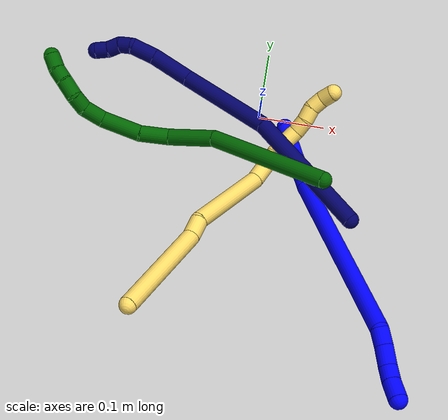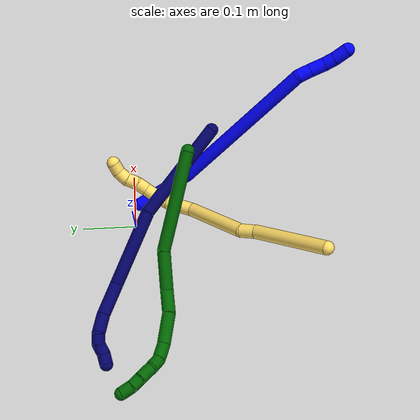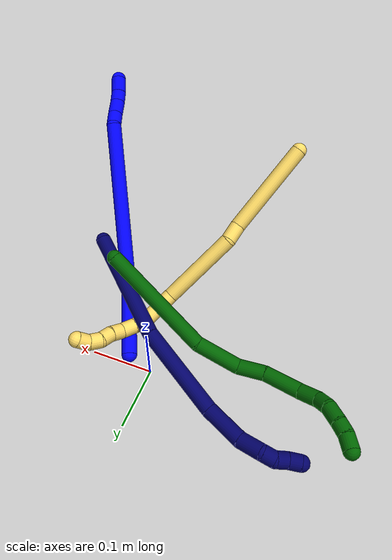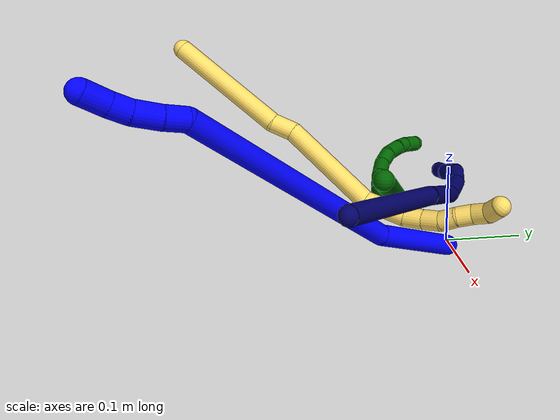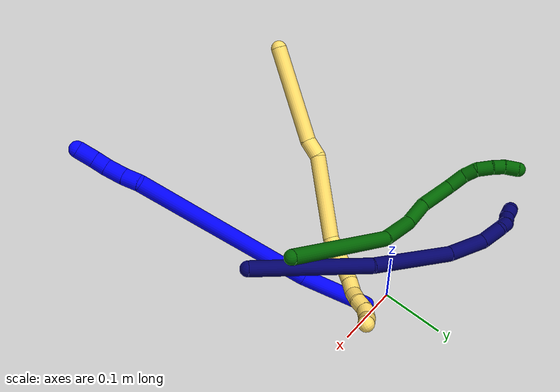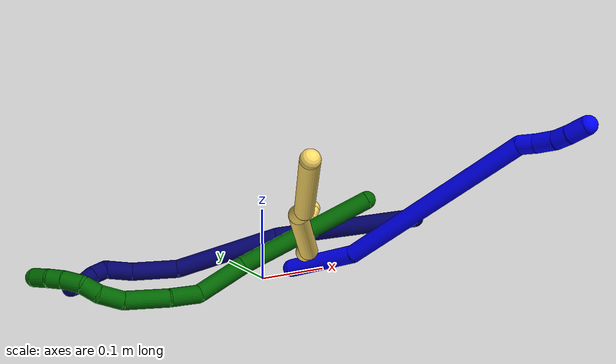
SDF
<sdf version="1.7">
 <world name="default">
  <model name="1">
   <static>0</static>
   <link name="1">
    <collision name="collision-cylinder-e_1_1_4">
     <pose>0.005986 -0.002206 0.053922 0.040888 0.110465 0.002261</pose>
     <geometry><cylinder><radius>0.0125</radius><length>0.108597</length></cylinder></geometry>
     <surface>
      <friction><ode><mu>1.16</mu><mu2>1.16</mu2><slip1>0</slip1><slip2>0</slip2></ode></friction>
      <contact><ode><kp>1e+06</kp><kd>1</kd><max_vel>0</max_vel><min_depth>0.001</min_depth></ode></contact>
     </surface>
    </collision>
    <visual name="visual-cylinder-e_1_1_4">
     <pose>0.005986 -0.002206 0.053922 0.040888 0.110465 0.002261</pose>
     <geometry><cylinder><radius>0.0125</radius><length>0.108597</length></cylinder></geometry>
     <material><ambient>0 0 1 1</ambient></material>
    </visual>
    <collision name="collision-cylinder-e_2_4_5">
     <pose>0.009596 -0.049845 0.246526 0.316591 -0.016279 -0.002599</pose>
     <geometry><cylinder><radius>0.0125</radius><length>0.291907</length></cylinder></geometry>
     <surface>
      <friction><ode><mu>1.16</mu><mu2>1.16</mu2><slip1>0</slip1><slip2>0</slip2></ode></friction>
      <contact><ode><kp>1e+06</kp><kd>1</kd><max_vel>0</max_vel><min_depth>0.001</min_depth></ode></contact>
     </surface>
    </collision>
    <visual name="visual-cylinder-e_2_4_5">
     <pose>0.009596 -0.049845 0.246526 0.316591 -0.016279 -0.002599</pose>
     <geometry><cylinder><radius>0.0125</radius><length>0.291907</length></cylinder></geometry>
     <material><ambient>0 0 1 1</ambient></material>
    </visual>
    <collision name="collision-cylinder-e_3_5_6">
     <pose>0.009707 -0.094182 0.396862 -0.093811 0.209351 -0.009863</pose>
     <geometry><cylinder><radius>0.0125</radius><length>0.023935</length></cylinder></geometry>
     <surface>
      <friction><ode><mu>1.16</mu><mu2>1.16</mu2><slip1>0</slip1><slip2>0</slip2></ode></friction>
      <contact><ode><kp>1e+06</kp><kd>1</kd><max_vel>0</max_vel><min_depth>0.001</min_depth></ode></contact>
     </surface>
    </collision>
    <visual name="visual-cylinder-e_3_5_6">
     <pose>0.009707 -0.094182 0.396862 -0.093811 0.209351 -0.009863</pose>
     <geometry><cylinder><radius>0.0125</radius><length>0.023935</length></cylinder></geometry>
     <material><ambient>0 0 1 1</ambient></material>
    </visual>
    <collision name="collision-cylinder-e_4_6_7">
     <pose>0.015733 -0.093077 0.422164 -0.000616 0.253696 -7.9e-05</pose>
     <geometry><cylinder><radius>0.0125</radius><length>0.028196</length></cylinder></geometry>
     <surface>
      <friction><ode><mu>1.16</mu><mu2>1.16</mu2><slip1>0</slip1><slip2>0</slip2></ode></friction>
      <contact><ode><kp>1e+06</kp><kd>1</kd><max_vel>0</max_vel><min_depth>0.001</min_depth></ode></contact>
     </surface>
    </collision>
    <visual name="visual-cylinder-e_4_6_7">
     <pose>0.015733 -0.093077 0.422164 -0.000616 0.253696 -7.9e-05</pose>
     <geometry><cylinder><radius>0.0125</radius><length>0.028196</length></cylinder></geometry>
     <material><ambient>0 0 1 1</ambient></material>
    </visual>
    <collision name="collision-cylinder-e_5_7_8">
     <pose>0.021267 -0.094911 0.445788 0.182526 0.194239 0.017832</pose>
     <geometry><cylinder><radius>0.0125</radius><length>0.020681</length></cylinder></geometry>
     <surface>
      <friction><ode><mu>1.16</mu><mu2>1.16</mu2><slip1>0</slip1><slip2>0</slip2></ode></friction>
      <contact><ode><kp>1e+06</kp><kd>1</kd><max_vel>0</max_vel><min_depth>0.001</min_depth></ode></contact>
     </surface>
    </collision>
    <visual name="visual-cylinder-e_5_7_8">
     <pose>0.021267 -0.094911 0.445788 0.182526 0.194239 0.017832</pose>
     <geometry><cylinder><radius>0.0125</radius><length>0.020681</length></cylinder></geometry>
     <material><ambient>0 0 1 1</ambient></material>
    </visual>
    <collision name="collision-cylinder-e_6_8_2">
     <pose>0.024396 -0.09988 0.468686 0.237503 0.085056 0.010154</pose>
     <geometry><cylinder><radius>0.0125</radius><length>0.026685</length></cylinder></geometry>
     <surface>
      <friction><ode><mu>1.16</mu><mu2>1.16</mu2><slip1>0</slip1><slip2>0</slip2></ode></friction>
      <contact><ode><kp>1e+06</kp><kd>1</kd><max_vel>0</max_vel><min_depth>0.001</min_depth></ode></contact>
     </surface>
    </collision>
    <visual name="visual-cylinder-e_6_8_2">
     <pose>0.024396 -0.09988 0.468686 0.237503 0.085056 0.010154</pose>
     <geometry><cylinder><radius>0.0125</radius><length>0.026685</length></cylinder></geometry>
     <material><ambient>0 0 1 1</ambient></material>
    </visual>
    <collision name="collision-sphere-2">
     <pose>0.02553 -0.103008 0.481607 0 -0 0</pose>
     <geometry><sphere><radius>0.0125</radius></sphere></geometry>
     <surface>
      <friction><ode><mu>1.16</mu><mu2>1.16</mu2><slip1>0</slip1><slip2>0</slip2></ode></friction>
      <contact><ode><kp>1e+06</kp><kd>1</kd><max_vel>0</max_vel><min_depth>0.001</min_depth></ode></contact>
     </surface>
    </collision>
    <visual name="visual-sphere-2">
     <pose>0.02553 -0.103008 0.481607 0 -0 0</pose>
     <geometry><sphere><radius>0.0125</radius></sphere></geometry>
     <material><ambient>0 0 1 1</ambient></material>
    </visual>
    <collision name="collision-sphere-4">
     <pose>0.011972 -0.004412 0.107845 0 -0 0</pose>
     <geometry><sphere><radius>0.0125</radius></sphere></geometry>
     <surface>
      <friction><ode><mu>1.16</mu><mu2>1.16</mu2><slip1>0</slip1><slip2>0</slip2></ode></friction>
      <contact><ode><kp>1e+06</kp><kd>1</kd><max_vel>0</max_vel><min_depth>0.001</min_depth></ode></contact>
     </surface>
    </collision>
    <visual name="visual-sphere-4">
     <pose>0.011972 -0.004412 0.107845 0 -0 0</pose>
     <geometry><sphere><radius>0.0125</radius></sphere></geometry>
     <material><ambient>0 0 1 1</ambient></material>
    </visual>
    <collision name="collision-sphere-1">
     <geometry><sphere><radius>0.0125</radius></sphere></geometry>
     <surface>
      <friction><ode><mu>1.16</mu><mu2>1.16</mu2><slip1>0</slip1><slip2>0</slip2></ode></friction>
      <contact><ode><kp>1e+06</kp><kd>1</kd><max_vel>0</max_vel><min_depth>0.001</min_depth></ode></contact>
     </surface>
    </collision>
    <visual name="visual-sphere-1">
     <geometry><sphere><radius>0.0125</radius></sphere></geometry>
     <material><ambient>0 0 1 1</ambient></material>
    </visual>
    <collision name="collision-sphere-8">
     <pose>0.023263 -0.096752 0.455765 0 -0 0</pose>
     <geometry><sphere><radius>0.0125</radius></sphere></geometry>
     <surface>
      <friction><ode><mu>1.16</mu><mu2>1.16</mu2><slip1>0</slip1><slip2>0</slip2></ode></friction>
      <contact><ode><kp>1e+06</kp><kd>1</kd><max_vel>0</max_vel><min_depth>0.001</min_depth></ode></contact>
     </surface>
    </collision>
    <visual name="visual-sphere-8">
     <pose>0.023263 -0.096752 0.455765 0 -0 0</pose>
     <geometry><sphere><radius>0.0125</radius></sphere></geometry>
     <material><ambient>0 0 1 1</ambient></material>
    </visual>
    <collision name="collision-sphere-5">
     <pose>0.00722 -0.095279 0.385207 0 -0 0</pose>
     <geometry><sphere><radius>0.0125</radius></sphere></geometry>
     <surface>
      <friction><ode><mu>1.16</mu><mu2>1.16</mu2><slip1>0</slip1><slip2>0</slip2></ode></friction>
      <contact><ode><kp>1e+06</kp><kd>1</kd><max_vel>0</max_vel><min_depth>0.001</min_depth></ode></contact>
     </surface>
    </collision>
    <visual name="visual-sphere-5">
     <pose>0.00722 -0.095279 0.385207 0 -0 0</pose>
     <geometry><sphere><radius>0.0125</radius></sphere></geometry>
     <material><ambient>0 0 1 1</ambient></material>
    </visual>
    <collision name="collision-sphere-6">
     <pose>0.012194 -0.093086 0.408517 0 -0 0</pose>
     <geometry><sphere><radius>0.0125</radius></sphere></geometry>
     <surface>
      <friction><ode><mu>1.16</mu><mu2>1.16</mu2><slip1>0</slip1><slip2>0</slip2></ode></friction>
      <contact><ode><kp>1e+06</kp><kd>1</kd><max_vel>0</max_vel><min_depth>0.001</min_depth></ode></contact>
     </surface>
    </collision>
    <visual name="visual-sphere-6">
     <pose>0.012194 -0.093086 0.408517 0 -0 0</pose>
     <geometry><sphere><radius>0.0125</radius></sphere></geometry>
     <material><ambient>0 0 1 1</ambient></material>
    </visual>
    <collision name="collision-sphere-7">
     <pose>0.019271 -0.093069 0.435811 0 -0 0</pose>
     <geometry><sphere><radius>0.0125</radius></sphere></geometry>
     <surface>
      <friction><ode><mu>1.16</mu><mu2>1.16</mu2><slip1>0</slip1><slip2>0</slip2></ode></friction>
      <contact><ode><kp>1e+06</kp><kd>1</kd><max_vel>0</max_vel><min_depth>0.001</min_depth></ode></contact>
     </surface>
    </collision>
    <visual name="visual-sphere-7">
     <pose>0.019271 -0.093069 0.435811 0 -0 0</pose>
     <geometry><sphere><radius>0.0125</radius></sphere></geometry>
     <material><ambient>0 0 1 1</ambient></material>
    </visual>
    <inertial>
     <pose>0.010436 -0.048593 0.241893 0 -0 0</pose>
     <mass>0.5</mass>
     <inertia><ixx>0.0022</ixx><ixy>0</ixy><ixz>0</ixz><iyy>0.002087</iyy><iyz>0</iyz><izz>0.000712</izz></inertia>
    </inertial>
   </link>
   <pose>0.04151 -0.010951 0.011478 -1.24228 0.156935 -2.53498</pose>
  </model>
  <model name="5">
   <static>0</static>
   <link name="5">
    <collision name="collision-cylinder-e_1_1_4">
     <pose>0.016928 0.011769 -0.075087 -2.98612 0.219153 -1.90943</pose>
     <geometry><cylinder><radius>0.0125</radius><length>0.155733</length></cylinder></geometry>
     <surface>
      <friction><ode><mu>1.16</mu><mu2>1.16</mu2><slip1>0</slip1><slip2>0</slip2></ode></friction>
      <contact><ode><kp>1e+06</kp><kd>1</kd><max_vel>0</max_vel><min_depth>0.001</min_depth></ode></contact>
     </surface>
    </collision>
    <visual name="visual-cylinder-e_1_1_4">
     <pose>0.016928 0.011769 -0.075087 -2.98612 0.219153 -1.90943</pose>
     <geometry><cylinder><radius>0.0125</radius><length>0.155733</length></cylinder></geometry>
     <material><ambient>1 0.858824 0.4 1</ambient></material>
    </visual>
    <collision name="collision-cylinder-e_2_4_5">
     <pose>0.033238 0.027689 -0.164211 -2.85405 -0.042244 0.289799</pose>
     <geometry><cylinder><radius>0.0125</radius><length>0.029302</length></cylinder></geometry>
     <surface>
      <friction><ode><mu>1.16</mu><mu2>1.16</mu2><slip1>0</slip1><slip2>0</slip2></ode></friction>
      <contact><ode><kp>1e+06</kp><kd>1</kd><max_vel>0</max_vel><min_depth>0.001</min_depth></ode></contact>
     </surface>
    </collision>
    <visual name="visual-cylinder-e_2_4_5">
     <pose>0.033238 0.027689 -0.164211 -2.85405 -0.042244 0.289799</pose>
     <geometry><cylinder><radius>0.0125</radius><length>0.029302</length></cylinder></geometry>
     <material><ambient>1 0.858824 0.4 1</ambient></material>
    </visual>
    <collision name="collision-cylinder-e_3_5_6">
     <pose>0.056115 0.043132 -0.2388 -2.95724 0.364406 -2.21157</pose>
     <geometry><cylinder><radius>0.0125</radius><length>0.131849</length></cylinder></geometry>
     <surface>
      <friction><ode><mu>1.16</mu><mu2>1.16</mu2><slip1>0</slip1><slip2>0</slip2></ode></friction>
      <contact><ode><kp>1e+06</kp><kd>1</kd><max_vel>0</max_vel><min_depth>0.001</min_depth></ode></contact>
     </surface>
    </collision>
    <visual name="visual-cylinder-e_3_5_6">
     <pose>0.056115 0.043132 -0.2388 -2.95724 0.364406 -2.21157</pose>
     <geometry><cylinder><radius>0.0125</radius><length>0.131849</length></cylinder></geometry>
     <material><ambient>1 0.858824 0.4 1</ambient></material>
    </visual>
    <collision name="collision-cylinder-e_4_6_7">
     <pose>0.081934 0.065676 -0.323155 -2.69998 0.088058 -0.387624</pose>
     <geometry><cylinder><radius>0.0125</radius><length>0.052863</length></cylinder></geometry>
     <surface>
      <friction><ode><mu>1.16</mu><mu2>1.16</mu2><slip1>0</slip1><slip2>0</slip2></ode></friction>
      <contact><ode><kp>1e+06</kp><kd>1</kd><max_vel>0</max_vel><min_depth>0.001</min_depth></ode></contact>
     </surface>
    </collision>
    <visual name="visual-cylinder-e_4_6_7">
     <pose>0.081934 0.065676 -0.323155 -2.69998 0.088058 -0.387624</pose>
     <geometry><cylinder><radius>0.0125</radius><length>0.052863</length></cylinder></geometry>
     <material><ambient>1 0.858824 0.4 1</ambient></material>
    </visual>
    <collision name="collision-cylinder-e_5_7_8">
     <pose>0.085594 0.085524 -0.355941 -2.37823 0.107026 -0.265343</pose>
     <geometry><cylinder><radius>0.0125</radius><length>0.025006</length></cylinder></geometry>
     <surface>
      <friction><ode><mu>1.16</mu><mu2>1.16</mu2><slip1>0</slip1><slip2>0</slip2></ode></friction>
      <contact><ode><kp>1e+06</kp><kd>1</kd><max_vel>0</max_vel><min_depth>0.001</min_depth></ode></contact>
     </surface>
    </collision>
    <visual name="visual-cylinder-e_5_7_8">
     <pose>0.085594 0.085524 -0.355941 -2.37823 0.107026 -0.265343</pose>
     <geometry><cylinder><radius>0.0125</radius><length>0.025006</length></cylinder></geometry>
     <material><ambient>1 0.858824 0.4 1</ambient></material>
    </visual>
    <collision name="collision-cylinder-e_6_8_9">
     <pose>0.088852 0.102854 -0.372094 -2.25815 0.168471 -0.353383</pose>
     <geometry><cylinder><radius>0.0125</radius><length>0.022928</length></cylinder></geometry>
     <surface>
      <friction><ode><mu>1.16</mu><mu2>1.16</mu2><slip1>0</slip1><slip2>0</slip2></ode></friction>
      <contact><ode><kp>1e+06</kp><kd>1</kd><max_vel>0</max_vel><min_depth>0.001</min_depth></ode></contact>
     </surface>
    </collision>
    <visual name="visual-cylinder-e_6_8_9">
     <pose>0.088852 0.102854 -0.372094 -2.25815 0.168471 -0.353383</pose>
     <geometry><cylinder><radius>0.0125</radius><length>0.022928</length></cylinder></geometry>
     <material><ambient>1 0.858824 0.4 1</ambient></material>
    </visual>
    <collision name="collision-cylinder-e_7_9_10">
     <pose>0.090302 0.12131 -0.383654 -1.99496 -0.044238 0.0685</pose>
     <geometry><cylinder><radius>0.0125</radius><length>0.021353</length></cylinder></geometry>
     <surface>
      <friction><ode><mu>1.16</mu><mu2>1.16</mu2><slip1>0</slip1><slip2>0</slip2></ode></friction>
      <contact><ode><kp>1e+06</kp><kd>1</kd><max_vel>0</max_vel><min_depth>0.001</min_depth></ode></contact>
     </surface>
    </collision>
    <visual name="visual-cylinder-e_7_9_10">
     <pose>0.090302 0.12131 -0.383654 -1.99496 -0.044238 0.0685</pose>
     <geometry><cylinder><radius>0.0125</radius><length>0.021353</length></cylinder></geometry>
     <material><ambient>1 0.858824 0.4 1</ambient></material>
    </visual>
    <collision name="collision-cylinder-e_8_10_11">
     <pose>0.088048 0.139239 -0.394016 -2.1998 -0.173815 0.338999</pose>
     <geometry><cylinder><radius>0.0125</radius><length>0.020614</length></cylinder></geometry>
     <surface>
      <friction><ode><mu>1.16</mu><mu2>1.16</mu2><slip1>0</slip1><slip2>0</slip2></ode></friction>
      <contact><ode><kp>1e+06</kp><kd>1</kd><max_vel>0</max_vel><min_depth>0.001</min_depth></ode></contact>
     </surface>
    </collision>
    <visual name="visual-cylinder-e_8_10_11">
     <pose>0.088048 0.139239 -0.394016 -2.1998 -0.173815 0.338999</pose>
     <geometry><cylinder><radius>0.0125</radius><length>0.020614</length></cylinder></geometry>
     <material><ambient>1 0.858824 0.4 1</ambient></material>
    </visual>
    <collision name="collision-cylinder-e_9_11_12">
     <pose>0.087993 0.156369 -0.404495 -2.03855 0.171158 -0.277108</pose>
     <geometry><cylinder><radius>0.0125</radius><length>0.020286</length></cylinder></geometry>
     <surface>
      <friction><ode><mu>1.16</mu><mu2>1.16</mu2><slip1>0</slip1><slip2>0</slip2></ode></friction>
      <contact><ode><kp>1e+06</kp><kd>1</kd><max_vel>0</max_vel><min_depth>0.001</min_depth></ode></contact>
     </surface>
    </collision>
    <visual name="visual-cylinder-e_9_11_12">
     <pose>0.087993 0.156369 -0.404495 -2.03855 0.171158 -0.277108</pose>
     <geometry><cylinder><radius>0.0125</radius><length>0.020286</length></cylinder></geometry>
     <material><ambient>1 0.858824 0.4 1</ambient></material>
    </visual>
    <collision name="collision-cylinder-e_10_12_2">
     <pose>0.091694 0.175126 -0.40917 -1.5879 0.197961 -0.201353</pose>
     <geometry><cylinder><radius>0.0125</radius><length>0.020066</length></cylinder></geometry>
     <surface>
      <friction><ode><mu>1.16</mu><mu2>1.16</mu2><slip1>0</slip1><slip2>0</slip2></ode></friction>
      <contact><ode><kp>1e+06</kp><kd>1</kd><max_vel>0</max_vel><min_depth>0.001</min_depth></ode></contact>
     </surface>
    </collision>
    <visual name="visual-cylinder-e_10_12_2">
     <pose>0.091694 0.175126 -0.40917 -1.5879 0.197961 -0.201353</pose>
     <geometry><cylinder><radius>0.0125</radius><length>0.020066</length></cylinder></geometry>
     <material><ambient>1 0.858824 0.4 1</ambient></material>
    </visual>
    <collision name="collision-sphere-2">
     <pose>0.093667 0.184962 -0.409338 0 -0 0</pose>
     <geometry><sphere><radius>0.0125</radius></sphere></geometry>
     <surface>
      <friction><ode><mu>1.16</mu><mu2>1.16</mu2><slip1>0</slip1><slip2>0</slip2></ode></friction>
      <contact><ode><kp>1e+06</kp><kd>1</kd><max_vel>0</max_vel><min_depth>0.001</min_depth></ode></contact>
     </surface>
    </collision>
    <visual name="visual-sphere-2">
     <pose>0.093667 0.184962 -0.409338 0 -0 0</pose>
     <geometry><sphere><radius>0.0125</radius></sphere></geometry>
     <material><ambient>1 0.858824 0.4 1</ambient></material>
    </visual>
    <collision name="collision-sphere-12">
     <pose>0.08972 0.16529 -0.409002 0 -0 0</pose>
     <geometry><sphere><radius>0.0125</radius></sphere></geometry>
     <surface>
      <friction><ode><mu>1.16</mu><mu2>1.16</mu2><slip1>0</slip1><slip2>0</slip2></ode></friction>
      <contact><ode><kp>1e+06</kp><kd>1</kd><max_vel>0</max_vel><min_depth>0.001</min_depth></ode></contact>
     </surface>
    </collision>
    <visual name="visual-sphere-12">
     <pose>0.08972 0.16529 -0.409002 0 -0 0</pose>
     <geometry><sphere><radius>0.0125</radius></sphere></geometry>
     <material><ambient>1 0.858824 0.4 1</ambient></material>
    </visual>
    <collision name="collision-sphere-11">
     <pose>0.086265 0.147448 -0.399989 0 -0 0</pose>
     <geometry><sphere><radius>0.0125</radius></sphere></geometry>
     <surface>
      <friction><ode><mu>1.16</mu><mu2>1.16</mu2><slip1>0</slip1><slip2>0</slip2></ode></friction>
      <contact><ode><kp>1e+06</kp><kd>1</kd><max_vel>0</max_vel><min_depth>0.001</min_depth></ode></contact>
     </surface>
    </collision>
    <visual name="visual-sphere-11">
     <pose>0.086265 0.147448 -0.399989 0 -0 0</pose>
     <geometry><sphere><radius>0.0125</radius></sphere></geometry>
     <material><ambient>1 0.858824 0.4 1</ambient></material>
    </visual>
    <collision name="collision-sphere-10">
     <pose>0.08983 0.131031 -0.388044 0 -0 0</pose>
     <geometry><sphere><radius>0.0125</radius></sphere></geometry>
     <surface>
      <friction><ode><mu>1.16</mu><mu2>1.16</mu2><slip1>0</slip1><slip2>0</slip2></ode></friction>
      <contact><ode><kp>1e+06</kp><kd>1</kd><max_vel>0</max_vel><min_depth>0.001</min_depth></ode></contact>
     </surface>
    </collision>
    <visual name="visual-sphere-10">
     <pose>0.08983 0.131031 -0.388044 0 -0 0</pose>
     <geometry><sphere><radius>0.0125</radius></sphere></geometry>
     <material><ambient>1 0.858824 0.4 1</ambient></material>
    </visual>
    <collision name="collision-sphere-9">
     <pose>0.090774 0.111589 -0.379264 0 -0 0</pose>
     <geometry><sphere><radius>0.0125</radius></sphere></geometry>
     <surface>
      <friction><ode><mu>1.16</mu><mu2>1.16</mu2><slip1>0</slip1><slip2>0</slip2></ode></friction>
      <contact><ode><kp>1e+06</kp><kd>1</kd><max_vel>0</max_vel><min_depth>0.001</min_depth></ode></contact>
     </surface>
    </collision>
    <visual name="visual-sphere-9">
     <pose>0.090774 0.111589 -0.379264 0 -0 0</pose>
     <geometry><sphere><radius>0.0125</radius></sphere></geometry>
     <material><ambient>1 0.858824 0.4 1</ambient></material>
    </visual>
    <collision name="collision-sphere-4">
     <pose>0.033857 0.023538 -0.150174 0 -0 0</pose>
     <geometry><sphere><radius>0.0125</radius></sphere></geometry>
     <surface>
      <friction><ode><mu>1.16</mu><mu2>1.16</mu2><slip1>0</slip1><slip2>0</slip2></ode></friction>
      <contact><ode><kp>1e+06</kp><kd>1</kd><max_vel>0</max_vel><min_depth>0.001</min_depth></ode></contact>
     </surface>
    </collision>
    <visual name="visual-sphere-4">
     <pose>0.033857 0.023538 -0.150174 0 -0 0</pose>
     <geometry><sphere><radius>0.0125</radius></sphere></geometry>
     <material><ambient>1 0.858824 0.4 1</ambient></material>
    </visual>
    <collision name="collision-sphere-1">
     <geometry><sphere><radius>0.0125</radius></sphere></geometry>
     <surface>
      <friction><ode><mu>1.16</mu><mu2>1.16</mu2><slip1>0</slip1><slip2>0</slip2></ode></friction>
      <contact><ode><kp>1e+06</kp><kd>1</kd><max_vel>0</max_vel><min_depth>0.001</min_depth></ode></contact>
     </surface>
    </collision>
    <visual name="visual-sphere-1">
     <geometry><sphere><radius>0.0125</radius></sphere></geometry>
     <material><ambient>1 0.858824 0.4 1</ambient></material>
    </visual>
    <collision name="collision-sphere-8">
     <pose>0.08693 0.094118 -0.364923 0 -0 0</pose>
     <geometry><sphere><radius>0.0125</radius></sphere></geometry>
     <surface>
      <friction><ode><mu>1.16</mu><mu2>1.16</mu2><slip1>0</slip1><slip2>0</slip2></ode></friction>
      <contact><ode><kp>1e+06</kp><kd>1</kd><max_vel>0</max_vel><min_depth>0.001</min_depth></ode></contact>
     </surface>
    </collision>
    <visual name="visual-sphere-8">
     <pose>0.08693 0.094118 -0.364923 0 -0 0</pose>
     <geometry><sphere><radius>0.0125</radius></sphere></geometry>
     <material><ambient>1 0.858824 0.4 1</ambient></material>
    </visual>
    <collision name="collision-sphere-5">
     <pose>0.032619 0.03184 -0.178248 0 -0 0</pose>
     <geometry><sphere><radius>0.0125</radius></sphere></geometry>
     <surface>
      <friction><ode><mu>1.16</mu><mu2>1.16</mu2><slip1>0</slip1><slip2>0</slip2></ode></friction>
      <contact><ode><kp>1e+06</kp><kd>1</kd><max_vel>0</max_vel><min_depth>0.001</min_depth></ode></contact>
     </surface>
    </collision>
    <visual name="visual-sphere-5">
     <pose>0.032619 0.03184 -0.178248 0 -0 0</pose>
     <geometry><sphere><radius>0.0125</radius></sphere></geometry>
     <material><ambient>1 0.858824 0.4 1</ambient></material>
    </visual>
    <collision name="collision-sphere-6">
     <pose>0.07961 0.054423 -0.299352 0 -0 0</pose>
     <geometry><sphere><radius>0.0125</radius></sphere></geometry>
     <surface>
      <friction><ode><mu>1.16</mu><mu2>1.16</mu2><slip1>0</slip1><slip2>0</slip2></ode></friction>
      <contact><ode><kp>1e+06</kp><kd>1</kd><max_vel>0</max_vel><min_depth>0.001</min_depth></ode></contact>
     </surface>
    </collision>
    <visual name="visual-sphere-6">
     <pose>0.07961 0.054423 -0.299352 0 -0 0</pose>
     <geometry><sphere><radius>0.0125</radius></sphere></geometry>
     <material><ambient>1 0.858824 0.4 1</ambient></material>
    </visual>
    <collision name="collision-sphere-7">
     <pose>0.084259 0.076929 -0.346959 0 -0 0</pose>
     <geometry><sphere><radius>0.0125</radius></sphere></geometry>
     <surface>
      <friction><ode><mu>1.16</mu><mu2>1.16</mu2><slip1>0</slip1><slip2>0</slip2></ode></friction>
      <contact><ode><kp>1e+06</kp><kd>1</kd><max_vel>0</max_vel><min_depth>0.001</min_depth></ode></contact>
     </surface>
    </collision>
    <visual name="visual-sphere-7">
     <pose>0.084259 0.076929 -0.346959 0 -0 0</pose>
     <geometry><sphere><radius>0.0125</radius></sphere></geometry>
     <material><ambient>1 0.858824 0.4 1</ambient></material>
    </visual>
    <inertial>
     <pose>0.053772 0.056893 -0.230473 0 -0 0</pose>
     <mass>0.5</mass>
     <inertia>
      <ixx>-0.000628</ixx>
      <ixy>0</ixy>
      <ixz>0</ixz>
      <iyy>-0.000212</iyy>
      <iyz>0</iyz>
      <izz>-0.000271</izz>
     </inertia>
    </inertial>
   </link>
   <pose>-0.125227 -0.332698 0.240583 0.840241 0.326784 -0.449005</pose>
  </model>
  <model name="6">
   <static>0</static>
   <link name="6">
    <collision name="collision-cylinder-e_1_1_4">
     <pose>-0.084932 0.02001 -0.039286 -2.6705 -1.09199 2.38922</pose>
     <geometry><cylinder><radius>0.0125</radius><length>0.191387</length></cylinder></geometry>
     <surface>
      <friction><ode><mu>1.16</mu><mu2>1.16</mu2><slip1>0</slip1><slip2>0</slip2></ode></friction>
      <contact><ode><kp>1e+06</kp><kd>1</kd><max_vel>0</max_vel><min_depth>0.001</min_depth></ode></contact>
     </surface>
    </collision>
    <visual name="visual-cylinder-e_1_1_4">
     <pose>-0.084932 0.02001 -0.039286 -2.6705 -1.09199 2.38922</pose>
     <geometry><cylinder><radius>0.0125</radius><length>0.191387</length></cylinder></geometry>
     <material><ambient>0 0.392157 0.003922 1</ambient></material>
    </visual>
    <collision name="collision-cylinder-e_2_4_5">
     <pose>-0.203846 0.036254 -0.093369 2.89243 -1.14849 -2.7592</pose>
     <geometry><cylinder><radius>0.0125</radius><length>0.07451</length></cylinder></geometry>
     <surface>
      <friction><ode><mu>1.16</mu><mu2>1.16</mu2><slip1>0</slip1><slip2>0</slip2></ode></friction>
      <contact><ode><kp>1e+06</kp><kd>1</kd><max_vel>0</max_vel><min_depth>0.001</min_depth></ode></contact>
     </surface>
    </collision>
    <visual name="visual-cylinder-e_2_4_5">
     <pose>-0.203846 0.036254 -0.093369 2.89243 -1.14849 -2.7592</pose>
     <geometry><cylinder><radius>0.0125</radius><length>0.07451</length></cylinder></geometry>
     <material><ambient>0 0.392157 0.003922 1</ambient></material>
    </visual>
    <collision name="collision-cylinder-e_3_5_6">
     <pose>-0.260049 0.02874 -0.107101 1.29359 -1.39714 -1.1304</pose>
     <geometry><cylinder><radius>0.0125</radius><length>0.04512</length></cylinder></geometry>
     <surface>
      <friction><ode><mu>1.16</mu><mu2>1.16</mu2><slip1>0</slip1><slip2>0</slip2></ode></friction>
      <contact><ode><kp>1e+06</kp><kd>1</kd><max_vel>0</max_vel><min_depth>0.001</min_depth></ode></contact>
     </surface>
    </collision>
    <visual name="visual-cylinder-e_3_5_6">
     <pose>-0.260049 0.02874 -0.107101 1.29359 -1.39714 -1.1304</pose>
     <geometry><cylinder><radius>0.0125</radius><length>0.04512</length></cylinder></geometry>
     <material><ambient>0 0.392157 0.003922 1</ambient></material>
    </visual>
    <collision name="collision-cylinder-e_4_6_7">
     <pose>-0.312223 0.027591 -0.10442 -1.01541 -1.46897 0.931126</pose>
     <geometry><cylinder><radius>0.0125</radius><length>0.060218</length></cylinder></geometry>
     <surface>
      <friction><ode><mu>1.16</mu><mu2>1.16</mu2><slip1>0</slip1><slip2>0</slip2></ode></friction>
      <contact><ode><kp>1e+06</kp><kd>1</kd><max_vel>0</max_vel><min_depth>0.001</min_depth></ode></contact>
     </surface>
    </collision>
    <visual name="visual-cylinder-e_4_6_7">
     <pose>-0.312223 0.027591 -0.10442 -1.01541 -1.46897 0.931126</pose>
     <geometry><cylinder><radius>0.0125</radius><length>0.060218</length></cylinder></geometry>
     <material><ambient>0 0.392157 0.003922 1</ambient></material>
    </visual>
    <collision name="collision-cylinder-e_5_7_8">
     <pose>-0.357358 0.033035 -0.097072 -0.460296 -1.17181 0.30851</pose>
     <geometry><cylinder><radius>0.0125</radius><length>0.032952</length></cylinder></geometry>
     <surface>
      <friction><ode><mu>1.16</mu><mu2>1.16</mu2><slip1>0</slip1><slip2>0</slip2></ode></friction>
      <contact><ode><kp>1e+06</kp><kd>1</kd><max_vel>0</max_vel><min_depth>0.001</min_depth></ode></contact>
     </surface>
    </collision>
    <visual name="visual-cylinder-e_5_7_8">
     <pose>-0.357358 0.033035 -0.097072 -0.460296 -1.17181 0.30851</pose>
     <geometry><cylinder><radius>0.0125</radius><length>0.032952</length></cylinder></geometry>
     <material><ambient>0 0.392157 0.003922 1</ambient></material>
    </visual>
    <collision name="collision-cylinder-e_6_8_9">
     <pose>-0.381203 0.041123 -0.085181 -0.705641 -0.819738 0.317284</pose>
     <geometry><cylinder><radius>0.0125</radius><length>0.023702</length></cylinder></geometry>
     <surface>
      <friction><ode><mu>1.16</mu><mu2>1.16</mu2><slip1>0</slip1><slip2>0</slip2></ode></friction>
      <contact><ode><kp>1e+06</kp><kd>1</kd><max_vel>0</max_vel><min_depth>0.001</min_depth></ode></contact>
     </surface>
    </collision>
    <visual name="visual-cylinder-e_6_8_9">
     <pose>-0.381203 0.041123 -0.085181 -0.705641 -0.819738 0.317284</pose>
     <geometry><cylinder><radius>0.0125</radius><length>0.023702</length></cylinder></geometry>
     <material><ambient>0 0.392157 0.003922 1</ambient></material>
    </visual>
    <collision name="collision-cylinder-e_7_9_10">
     <pose>-0.400299 0.055265 -0.07621 -1.26436 -0.841075 0.633107</pose>
     <geometry><cylinder><radius>0.0125</radius><length>0.027996</length></cylinder></geometry>
     <surface>
      <friction><ode><mu>1.16</mu><mu2>1.16</mu2><slip1>0</slip1><slip2>0</slip2></ode></friction>
      <contact><ode><kp>1e+06</kp><kd>1</kd><max_vel>0</max_vel><min_depth>0.001</min_depth></ode></contact>
     </surface>
    </collision>
    <visual name="visual-cylinder-e_7_9_10">
     <pose>-0.400299 0.055265 -0.07621 -1.26436 -0.841075 0.633107</pose>
     <geometry><cylinder><radius>0.0125</radius><length>0.027996</length></cylinder></geometry>
     <material><ambient>0 0.392157 0.003922 1</ambient></material>
    </visual>
    <collision name="collision-cylinder-e_8_10_11">
     <pose>-0.418369 0.070717 -0.072781 -1.47749 -0.85932 0.790719</pose>
     <geometry><cylinder><radius>0.0125</radius><length>0.020166</length></cylinder></geometry>
     <surface>
      <friction><ode><mu>1.16</mu><mu2>1.16</mu2><slip1>0</slip1><slip2>0</slip2></ode></friction>
      <contact><ode><kp>1e+06</kp><kd>1</kd><max_vel>0</max_vel><min_depth>0.001</min_depth></ode></contact>
     </surface>
    </collision>
    <visual name="visual-cylinder-e_8_10_11">
     <pose>-0.418369 0.070717 -0.072781 -1.47749 -0.85932 0.790719</pose>
     <geometry><cylinder><radius>0.0125</radius><length>0.020166</length></cylinder></geometry>
     <material><ambient>0 0.392157 0.003922 1</ambient></material>
    </visual>
    <collision name="collision-cylinder-e_9_11_2">
     <pose>-0.433164 0.086861 -0.072622 -1.61813 -0.64072 0.669568</pose>
     <geometry><cylinder><radius>0.0125</radius><length>0.023949</length></cylinder></geometry>
     <surface>
      <friction><ode><mu>1.16</mu><mu2>1.16</mu2><slip1>0</slip1><slip2>0</slip2></ode></friction>
      <contact><ode><kp>1e+06</kp><kd>1</kd><max_vel>0</max_vel><min_depth>0.001</min_depth></ode></contact>
     </surface>
    </collision>
    <visual name="visual-cylinder-e_9_11_2">
     <pose>-0.433164 0.086861 -0.072622 -1.61813 -0.64072 0.669568</pose>
     <geometry><cylinder><radius>0.0125</radius><length>0.023949</length></cylinder></geometry>
     <material><ambient>0 0.392157 0.003922 1</ambient></material>
    </visual>
    <collision name="collision-sphere-2">
     <pose>-0.440322 0.09645 -0.073076 0 -0 0</pose>
     <geometry><sphere><radius>0.0125</radius></sphere></geometry>
     <surface>
      <friction><ode><mu>1.16</mu><mu2>1.16</mu2><slip1>0</slip1><slip2>0</slip2></ode></friction>
      <contact><ode><kp>1e+06</kp><kd>1</kd><max_vel>0</max_vel><min_depth>0.001</min_depth></ode></contact>
     </surface>
    </collision>
    <visual name="visual-sphere-2">
     <pose>-0.440322 0.09645 -0.073076 0 -0 0</pose>
     <geometry><sphere><radius>0.0125</radius></sphere></geometry>
     <material><ambient>0 0.392157 0.003922 1</ambient></material>
    </visual>
    <collision name="collision-sphere-11">
     <pose>-0.426006 0.077272 -0.072168 0 -0 0</pose>
     <geometry><sphere><radius>0.0125</radius></sphere></geometry>
     <surface>
      <friction><ode><mu>1.16</mu><mu2>1.16</mu2><slip1>0</slip1><slip2>0</slip2></ode></friction>
      <contact><ode><kp>1e+06</kp><kd>1</kd><max_vel>0</max_vel><min_depth>0.001</min_depth></ode></contact>
     </surface>
    </collision>
    <visual name="visual-sphere-11">
     <pose>-0.426006 0.077272 -0.072168 0 -0 0</pose>
     <geometry><sphere><radius>0.0125</radius></sphere></geometry>
     <material><ambient>0 0.392157 0.003922 1</ambient></material>
    </visual>
    <collision name="collision-sphere-10">
     <pose>-0.410732 0.064162 -0.073395 0 -0 0</pose>
     <geometry><sphere><radius>0.0125</radius></sphere></geometry>
     <surface>
      <friction><ode><mu>1.16</mu><mu2>1.16</mu2><slip1>0</slip1><slip2>0</slip2></ode></friction>
      <contact><ode><kp>1e+06</kp><kd>1</kd><max_vel>0</max_vel><min_depth>0.001</min_depth></ode></contact>
     </surface>
    </collision>
    <visual name="visual-sphere-10">
     <pose>-0.410732 0.064162 -0.073395 0 -0 0</pose>
     <geometry><sphere><radius>0.0125</radius></sphere></geometry>
     <material><ambient>0 0.392157 0.003922 1</ambient></material>
    </visual>
    <collision name="collision-sphere-9">
     <pose>-0.389865 0.046368 -0.079025 0 -0 0</pose>
     <geometry><sphere><radius>0.0125</radius></sphere></geometry>
     <surface>
      <friction><ode><mu>1.16</mu><mu2>1.16</mu2><slip1>0</slip1><slip2>0</slip2></ode></friction>
      <contact><ode><kp>1e+06</kp><kd>1</kd><max_vel>0</max_vel><min_depth>0.001</min_depth></ode></contact>
     </surface>
    </collision>
    <visual name="visual-sphere-9">
     <pose>-0.389865 0.046368 -0.079025 0 -0 0</pose>
     <geometry><sphere><radius>0.0125</radius></sphere></geometry>
     <material><ambient>0 0.392157 0.003922 1</ambient></material>
    </visual>
    <collision name="collision-sphere-4">
     <pose>-0.169864 0.04002 -0.078572 0 -0 0</pose>
     <geometry><sphere><radius>0.0125</radius></sphere></geometry>
     <surface>
      <friction><ode><mu>1.16</mu><mu2>1.16</mu2><slip1>0</slip1><slip2>0</slip2></ode></friction>
      <contact><ode><kp>1e+06</kp><kd>1</kd><max_vel>0</max_vel><min_depth>0.001</min_depth></ode></contact>
     </surface>
    </collision>
    <visual name="visual-sphere-4">
     <pose>-0.169864 0.04002 -0.078572 0 -0 0</pose>
     <geometry><sphere><radius>0.0125</radius></sphere></geometry>
     <material><ambient>0 0.392157 0.003922 1</ambient></material>
    </visual>
    <collision name="collision-sphere-1">
     <geometry><sphere><radius>0.0125</radius></sphere></geometry>
     <surface>
      <friction><ode><mu>1.16</mu><mu2>1.16</mu2><slip1>0</slip1><slip2>0</slip2></ode></friction>
      <contact><ode><kp>1e+06</kp><kd>1</kd><max_vel>0</max_vel><min_depth>0.001</min_depth></ode></contact>
     </surface>
    </collision>
    <visual name="visual-sphere-1">
     <geometry><sphere><radius>0.0125</radius></sphere></geometry>
     <material><ambient>0 0.392157 0.003922 1</ambient></material>
    </visual>
    <collision name="collision-sphere-8">
     <pose>-0.37254 0.035878 -0.091337 0 -0 0</pose>
     <geometry><sphere><radius>0.0125</radius></sphere></geometry>
     <surface>
      <friction><ode><mu>1.16</mu><mu2>1.16</mu2><slip1>0</slip1><slip2>0</slip2></ode></friction>
      <contact><ode><kp>1e+06</kp><kd>1</kd><max_vel>0</max_vel><min_depth>0.001</min_depth></ode></contact>
     </surface>
    </collision>
    <visual name="visual-sphere-8">
     <pose>-0.37254 0.035878 -0.091337 0 -0 0</pose>
     <geometry><sphere><radius>0.0125</radius></sphere></geometry>
     <material><ambient>0 0.392157 0.003922 1</ambient></material>
    </visual>
    <collision name="collision-sphere-5">
     <pose>-0.237829 0.032489 -0.108167 0 -0 0</pose>
     <geometry><sphere><radius>0.0125</radius></sphere></geometry>
     <surface>
      <friction><ode><mu>1.16</mu><mu2>1.16</mu2><slip1>0</slip1><slip2>0</slip2></ode></friction>
      <contact><ode><kp>1e+06</kp><kd>1</kd><max_vel>0</max_vel><min_depth>0.001</min_depth></ode></contact>
     </surface>
    </collision>
    <visual name="visual-sphere-5">
     <pose>-0.237829 0.032489 -0.108167 0 -0 0</pose>
     <geometry><sphere><radius>0.0125</radius></sphere></geometry>
     <material><ambient>0 0.392157 0.003922 1</ambient></material>
    </visual>
    <collision name="collision-sphere-6">
     <pose>-0.28227 0.02499 -0.106034 0 -0 0</pose>
     <geometry><sphere><radius>0.0125</radius></sphere></geometry>
     <surface>
      <friction><ode><mu>1.16</mu><mu2>1.16</mu2><slip1>0</slip1><slip2>0</slip2></ode></friction>
      <contact><ode><kp>1e+06</kp><kd>1</kd><max_vel>0</max_vel><min_depth>0.001</min_depth></ode></contact>
     </surface>
    </collision>
    <visual name="visual-sphere-6">
     <pose>-0.28227 0.02499 -0.106034 0 -0 0</pose>
     <geometry><sphere><radius>0.0125</radius></sphere></geometry>
     <material><ambient>0 0.392157 0.003922 1</ambient></material>
    </visual>
    <collision name="collision-sphere-7">
     <pose>-0.342176 0.030192 -0.102806 0 -0 0</pose>
     <geometry><sphere><radius>0.0125</radius></sphere></geometry>
     <surface>
      <friction><ode><mu>1.16</mu><mu2>1.16</mu2><slip1>0</slip1><slip2>0</slip2></ode></friction>
      <contact><ode><kp>1e+06</kp><kd>1</kd><max_vel>0</max_vel><min_depth>0.001</min_depth></ode></contact>
     </surface>
    </collision>
    <visual name="visual-sphere-7">
     <pose>-0.342176 0.030192 -0.102806 0 -0 0</pose>
     <geometry><sphere><radius>0.0125</radius></sphere></geometry>
     <material><ambient>0 0.392157 0.003922 1</ambient></material>
    </visual>
    <inertial>
     <pose>-0.225613 0.033212 -0.072309 0 -0 0</pose>
     <mass>0.5</mass>
     <inertia>
      <ixx>-5.5e-05</ixx>
      <ixy>0</ixy>
      <ixz>0</ixz>
      <iyy>0.000816</iyy>
      <iyz>0</iyz>
      <izz>0.000467</izz>
     </inertia>
    </inertial>
   </link>
   <pose>0.104324 -0.105816 0.122195 -0.067072 -0.002505 -0.109021</pose>
  </model>
  <model name="7">
   <static>0</static>
   <link name="7">
    <collision name="collision-cylinder-e_1_1_4">
     <pose>-0.04088 -0.00314 0.087763 0.035762 -0.435676 -0.007917</pose>
     <geometry><cylinder><radius>0.0125</radius><length>0.193735</length></cylinder></geometry>
     <surface>
      <friction><ode><mu>1.16</mu><mu2>1.16</mu2><slip1>0</slip1><slip2>0</slip2></ode></friction>
      <contact><ode><kp>1e+06</kp><kd>1</kd><max_vel>0</max_vel><min_depth>0.001</min_depth></ode></contact>
     </surface>
    </collision>
    <visual name="visual-cylinder-e_1_1_4">
     <pose>-0.04088 -0.00314 0.087763 0.035762 -0.435676 -0.007917</pose>
     <geometry><cylinder><radius>0.0125</radius><length>0.193735</length></cylinder></geometry>
     <material><ambient>0.003922 0 0.403922 1</ambient></material>
    </visual>
    <collision name="collision-cylinder-e_2_4_5">
     <pose>-0.121463 0.006873 0.235189 -0.216978 -0.576256 0.064538</pose>
     <geometry><cylinder><radius>0.0125</radius><length>0.145726</length></cylinder></geometry>
     <surface>
      <friction><ode><mu>1.16</mu><mu2>1.16</mu2><slip1>0</slip1><slip2>0</slip2></ode></friction>
      <contact><ode><kp>1e+06</kp><kd>1</kd><max_vel>0</max_vel><min_depth>0.001</min_depth></ode></contact>
     </surface>
    </collision>
    <visual name="visual-cylinder-e_2_4_5">
     <pose>-0.121463 0.006873 0.235189 -0.216978 -0.576256 0.064538</pose>
     <geometry><cylinder><radius>0.0125</radius><length>0.145726</length></cylinder></geometry>
     <material><ambient>0.003922 0 0.403922 1</ambient></material>
    </visual>
    <collision name="collision-cylinder-e_3_5_6">
     <pose>-0.182873 0.018722 0.317945 0.056418 -0.753717 -0.022334</pose>
     <geometry><cylinder><radius>0.0125</radius><length>0.063441</length></cylinder></geometry>
     <surface>
      <friction><ode><mu>1.16</mu><mu2>1.16</mu2><slip1>0</slip1><slip2>0</slip2></ode></friction>
      <contact><ode><kp>1e+06</kp><kd>1</kd><max_vel>0</max_vel><min_depth>0.001</min_depth></ode></contact>
     </surface>
    </collision>
    <visual name="visual-cylinder-e_3_5_6">
     <pose>-0.182873 0.018722 0.317945 0.056418 -0.753717 -0.022334</pose>
     <geometry><cylinder><radius>0.0125</radius><length>0.063441</length></cylinder></geometry>
     <material><ambient>0.003922 0 0.403922 1</ambient></material>
    </visual>
    <collision name="collision-cylinder-e_4_6_7">
     <pose>-0.220097 0.014888 0.350842 0.252474 -0.992586 -0.137229</pose>
     <geometry><cylinder><radius>0.0125</radius><length>0.037054</length></cylinder></geometry>
     <surface>
      <friction><ode><mu>1.16</mu><mu2>1.16</mu2><slip1>0</slip1><slip2>0</slip2></ode></friction>
      <contact><ode><kp>1e+06</kp><kd>1</kd><max_vel>0</max_vel><min_depth>0.001</min_depth></ode></contact>
     </surface>
    </collision>
    <visual name="visual-cylinder-e_4_6_7">
     <pose>-0.220097 0.014888 0.350842 0.252474 -0.992586 -0.137229</pose>
     <geometry><cylinder><radius>0.0125</radius><length>0.037054</length></cylinder></geometry>
     <material><ambient>0.003922 0 0.403922 1</ambient></material>
    </visual>
    <collision name="collision-cylinder-e_5_7_8">
     <pose>-0.243417 0.015918 0.36582 -0.60262 -0.893317 0.295513</pose>
     <geometry><cylinder><radius>0.0125</radius><length>0.020035</length></cylinder></geometry>
     <surface>
      <friction><ode><mu>1.16</mu><mu2>1.16</mu2><slip1>0</slip1><slip2>0</slip2></ode></friction>
      <contact><ode><kp>1e+06</kp><kd>1</kd><max_vel>0</max_vel><min_depth>0.001</min_depth></ode></contact>
     </surface>
    </collision>
    <visual name="visual-cylinder-e_5_7_8">
     <pose>-0.243417 0.015918 0.36582 -0.60262 -0.893317 0.295513</pose>
     <geometry><cylinder><radius>0.0125</radius><length>0.020035</length></cylinder></geometry>
     <material><ambient>0.003922 0 0.403922 1</ambient></material>
    </visual>
    <collision name="collision-cylinder-e_6_8_9">
     <pose>-0.259374 0.025189 0.371991 -1.39778 -0.952476 0.81811</pose>
     <geometry><cylinder><radius>0.0125</radius><length>0.020008</length></cylinder></geometry>
     <surface>
      <friction><ode><mu>1.16</mu><mu2>1.16</mu2><slip1>0</slip1><slip2>0</slip2></ode></friction>
      <contact><ode><kp>1e+06</kp><kd>1</kd><max_vel>0</max_vel><min_depth>0.001</min_depth></ode></contact>
     </surface>
    </collision>
    <visual name="visual-cylinder-e_6_8_9">
     <pose>-0.259374 0.025189 0.371991 -1.39778 -0.952476 0.81811</pose>
     <geometry><cylinder><radius>0.0125</radius><length>0.020008</length></cylinder></geometry>
     <material><ambient>0.003922 0 0.403922 1</ambient></material>
    </visual>
    <collision name="collision-cylinder-e_7_9_2">
     <pose>-0.276685 0.034051 0.375479 -0.901847 -1.15763 0.612884</pose>
     <geometry><cylinder><radius>0.0125</radius><length>0.02</length></cylinder></geometry>
     <surface>
      <friction><ode><mu>1.16</mu><mu2>1.16</mu2><slip1>0</slip1><slip2>0</slip2></ode></friction>
      <contact><ode><kp>1e+06</kp><kd>1</kd><max_vel>0</max_vel><min_depth>0.001</min_depth></ode></contact>
     </surface>
    </collision>
    <visual name="visual-cylinder-e_7_9_2">
     <pose>-0.276685 0.034051 0.375479 -0.901847 -1.15763 0.612884</pose>
     <geometry><cylinder><radius>0.0125</radius><length>0.02</length></cylinder></geometry>
     <material><ambient>0.003922 0 0.403922 1</ambient></material>
    </visual>
    <collision name="collision-sphere-2">
     <pose>-0.285843 0.037201 0.37797 0 -0 0</pose>
     <geometry><sphere><radius>0.0125</radius></sphere></geometry>
     <surface>
      <friction><ode><mu>1.16</mu><mu2>1.16</mu2><slip1>0</slip1><slip2>0</slip2></ode></friction>
      <contact><ode><kp>1e+06</kp><kd>1</kd><max_vel>0</max_vel><min_depth>0.001</min_depth></ode></contact>
     </surface>
    </collision>
    <visual name="visual-sphere-2">
     <pose>-0.285843 0.037201 0.37797 0 -0 0</pose>
     <geometry><sphere><radius>0.0125</radius></sphere></geometry>
     <material><ambient>0.003922 0 0.403922 1</ambient></material>
    </visual>
    <collision name="collision-sphere-9">
     <pose>-0.267526 0.030902 0.372989 0 -0 0</pose>
     <geometry><sphere><radius>0.0125</radius></sphere></geometry>
     <surface>
      <friction><ode><mu>1.16</mu><mu2>1.16</mu2><slip1>0</slip1><slip2>0</slip2></ode></friction>
      <contact><ode><kp>1e+06</kp><kd>1</kd><max_vel>0</max_vel><min_depth>0.001</min_depth></ode></contact>
     </surface>
    </collision>
    <visual name="visual-sphere-9">
     <pose>-0.267526 0.030902 0.372989 0 -0 0</pose>
     <geometry><sphere><radius>0.0125</radius></sphere></geometry>
     <material><ambient>0.003922 0 0.403922 1</ambient></material>
    </visual>
    <collision name="collision-sphere-4">
     <pose>-0.081761 -0.00628 0.175525 0 -0 0</pose>
     <geometry><sphere><radius>0.0125</radius></sphere></geometry>
     <surface>
      <friction><ode><mu>1.16</mu><mu2>1.16</mu2><slip1>0</slip1><slip2>0</slip2></ode></friction>
      <contact><ode><kp>1e+06</kp><kd>1</kd><max_vel>0</max_vel><min_depth>0.001</min_depth></ode></contact>
     </surface>
    </collision>
    <visual name="visual-sphere-4">
     <pose>-0.081761 -0.00628 0.175525 0 -0 0</pose>
     <geometry><sphere><radius>0.0125</radius></sphere></geometry>
     <material><ambient>0.003922 0 0.403922 1</ambient></material>
    </visual>
    <collision name="collision-sphere-1">
     <geometry><sphere><radius>0.0125</radius></sphere></geometry>
     <surface>
      <friction><ode><mu>1.16</mu><mu2>1.16</mu2><slip1>0</slip1><slip2>0</slip2></ode></friction>
      <contact><ode><kp>1e+06</kp><kd>1</kd><max_vel>0</max_vel><min_depth>0.001</min_depth></ode></contact>
     </surface>
    </collision>
    <visual name="visual-sphere-1">
     <geometry><sphere><radius>0.0125</radius></sphere></geometry>
     <material><ambient>0.003922 0 0.403922 1</ambient></material>
    </visual>
    <collision name="collision-sphere-8">
     <pose>-0.251222 0.019477 0.370993 0 -0 0</pose>
     <geometry><sphere><radius>0.0125</radius></sphere></geometry>
     <surface>
      <friction><ode><mu>1.16</mu><mu2>1.16</mu2><slip1>0</slip1><slip2>0</slip2></ode></friction>
      <contact><ode><kp>1e+06</kp><kd>1</kd><max_vel>0</max_vel><min_depth>0.001</min_depth></ode></contact>
     </surface>
    </collision>
    <visual name="visual-sphere-8">
     <pose>-0.251222 0.019477 0.370993 0 -0 0</pose>
     <geometry><sphere><radius>0.0125</radius></sphere></geometry>
     <material><ambient>0.003922 0 0.403922 1</ambient></material>
    </visual>
    <collision name="collision-sphere-5">
     <pose>-0.161165 0.020026 0.294853 0 -0 0</pose>
     <geometry><sphere><radius>0.0125</radius></sphere></geometry>
     <surface>
      <friction><ode><mu>1.16</mu><mu2>1.16</mu2><slip1>0</slip1><slip2>0</slip2></ode></friction>
      <contact><ode><kp>1e+06</kp><kd>1</kd><max_vel>0</max_vel><min_depth>0.001</min_depth></ode></contact>
     </surface>
    </collision>
    <visual name="visual-sphere-5">
     <pose>-0.161165 0.020026 0.294853 0 -0 0</pose>
     <geometry><sphere><radius>0.0125</radius></sphere></geometry>
     <material><ambient>0.003922 0 0.403922 1</ambient></material>
    </visual>
    <collision name="collision-sphere-6">
     <pose>-0.204581 0.017417 0.341037 0 -0 0</pose>
     <geometry><sphere><radius>0.0125</radius></sphere></geometry>
     <surface>
      <friction><ode><mu>1.16</mu><mu2>1.16</mu2><slip1>0</slip1><slip2>0</slip2></ode></friction>
      <contact><ode><kp>1e+06</kp><kd>1</kd><max_vel>0</max_vel><min_depth>0.001</min_depth></ode></contact>
     </surface>
    </collision>
    <visual name="visual-sphere-6">
     <pose>-0.204581 0.017417 0.341037 0 -0 0</pose>
     <geometry><sphere><radius>0.0125</radius></sphere></geometry>
     <material><ambient>0.003922 0 0.403922 1</ambient></material>
    </visual>
    <collision name="collision-sphere-7">
     <pose>-0.235612 0.012359 0.360646 0 -0 0</pose>
     <geometry><sphere><radius>0.0125</radius></sphere></geometry>
     <surface>
      <friction><ode><mu>1.16</mu><mu2>1.16</mu2><slip1>0</slip1><slip2>0</slip2></ode></friction>
      <contact><ode><kp>1e+06</kp><kd>1</kd><max_vel>0</max_vel><min_depth>0.001</min_depth></ode></contact>
     </surface>
    </collision>
    <visual name="visual-sphere-7">
     <pose>-0.235612 0.012359 0.360646 0 -0 0</pose>
     <geometry><sphere><radius>0.0125</radius></sphere></geometry>
     <material><ambient>0.003922 0 0.403922 1</ambient></material>
    </visual>
    <inertial>
     <pose>-0.121955 0.007273 0.213457 0 -0 0</pose>
     <mass>0.5</mass>
     <inertia>
      <ixx>0.000787</ixx>
      <ixy>0</ixy>
      <ixz>0</ixz>
      <iyy>0.000918</iyy>
      <iyz>0</iyz>
      <izz>0.000429</izz>
     </inertia>
    </inertial>
   </link>
   <pose>0.151695 -0.151995 0.100908 -1.95796 0.285682 0.329891</pose>
  </model>
 </world>
</sdf>
